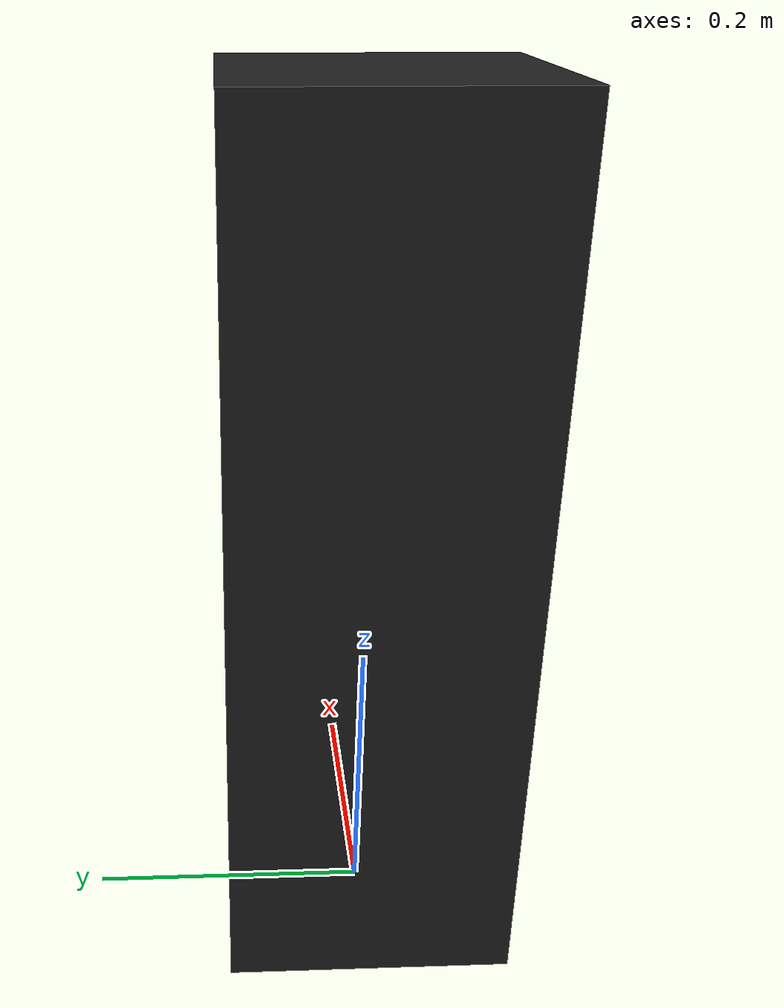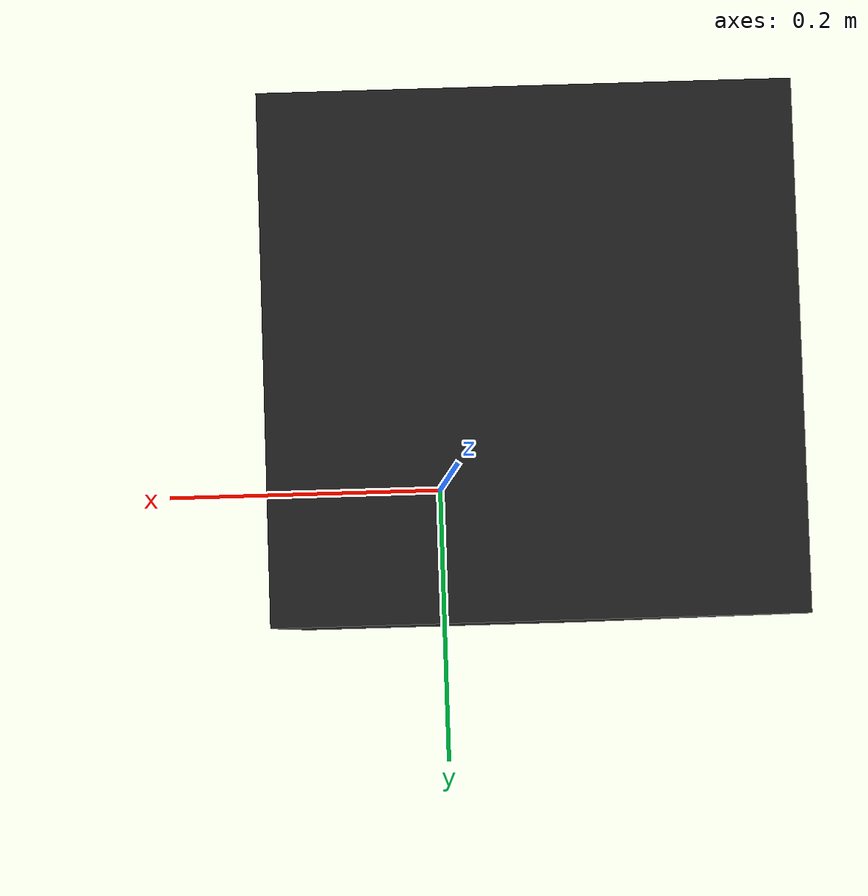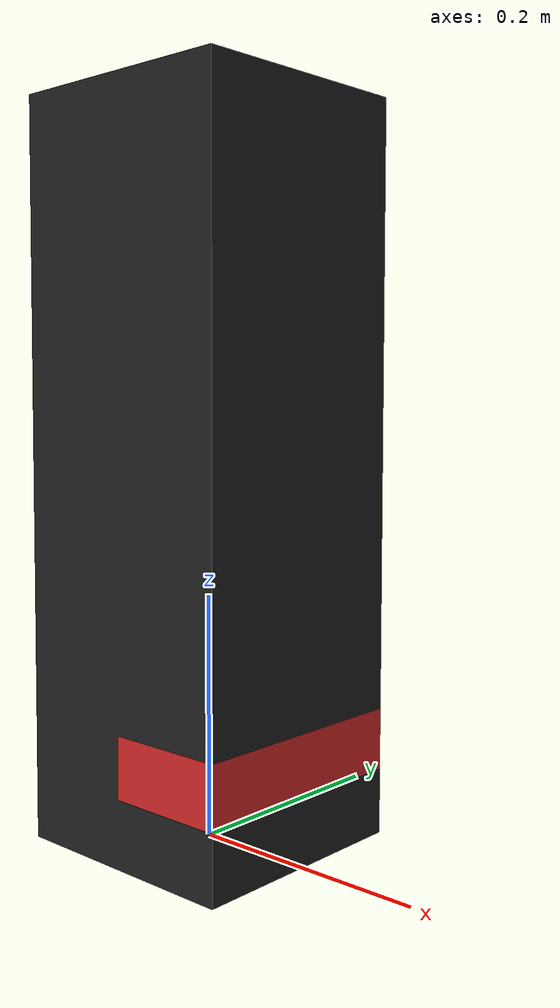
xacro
<?xml version="1.0"?>
<robot name="Tut" xmlns:xacro="http://www.ros.org/wiki/xacro">

  <!-- Import all Gazebo-customization elements, including Gazebo colors -->
  <xacro:include filename="$(find hironx_description)/urdf/tutorial.gazebo" />

	<!-- used for fixing robot to Gazebo 'base_link' -->
	<link name="world"/>

	<joint name="box_joint" type="fixed">
    <parent link="world"/>
    <child link="BOX_Link"/>
    <origin xyz="0 0 0.3" rpy="0 0 0"/>
  </joint>

	<link name="BOX_Link">
	  <visual>
		  <origin xyz="0 0 0.0" rpy="0 0 0"/>
		  <geometry>
			  <box size="0.2 0.2 0.6"/>
		  </geometry>
		  <material name="black"/>
	  </visual>
	  <interial>
		  <mass value="2"/>
		  <inertia
				ixx="1.0" ixy="0.0" ixz="0.0"
				iyy="1.0" iyz="0.0"
				izz="1.0"/>
	  </interial>
  </link>

<!-- Kinect-->
  <link name="kinect_link">

   <visual>
      <origin xyz="0 0 0" rpy="0 0 0"/>
      <geometry>
		<box size="0.1 0.2 0.05"/>
      </geometry>
      <material name="red"/>
    </visual>

  </link>

	<joint name="kinect_joint" type="fixed">
    <origin xyz="0.05 0 0.08" rpy="0 0 0"/>
    <parent link="world"/>
    <child link="kinect_link"/>
  </joint>

</robot>
